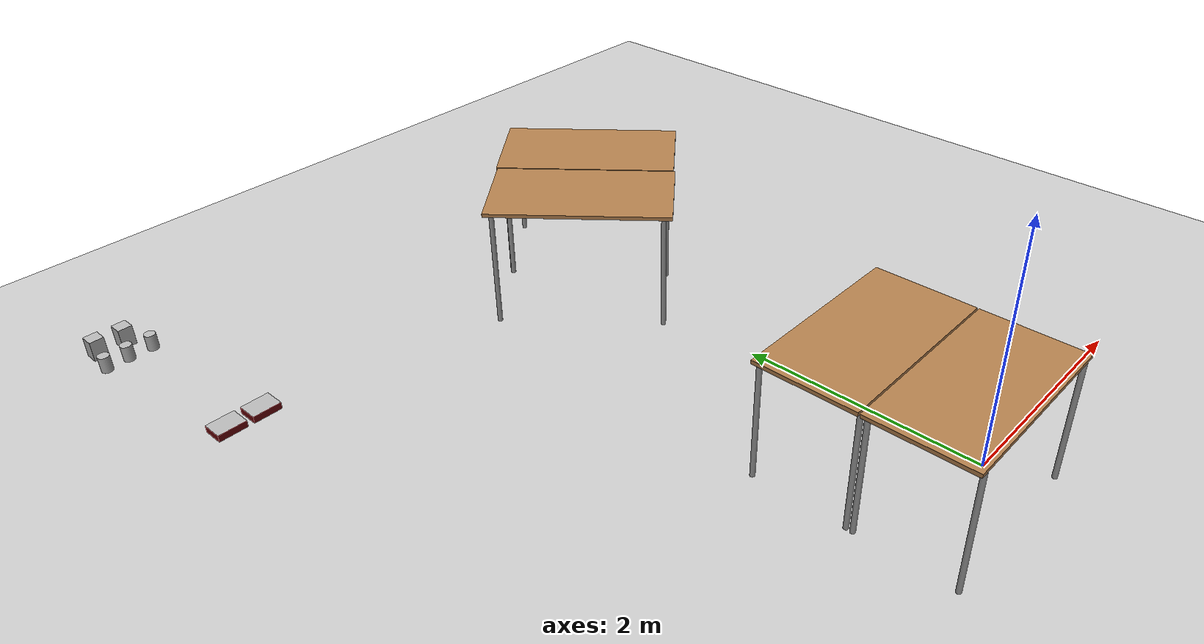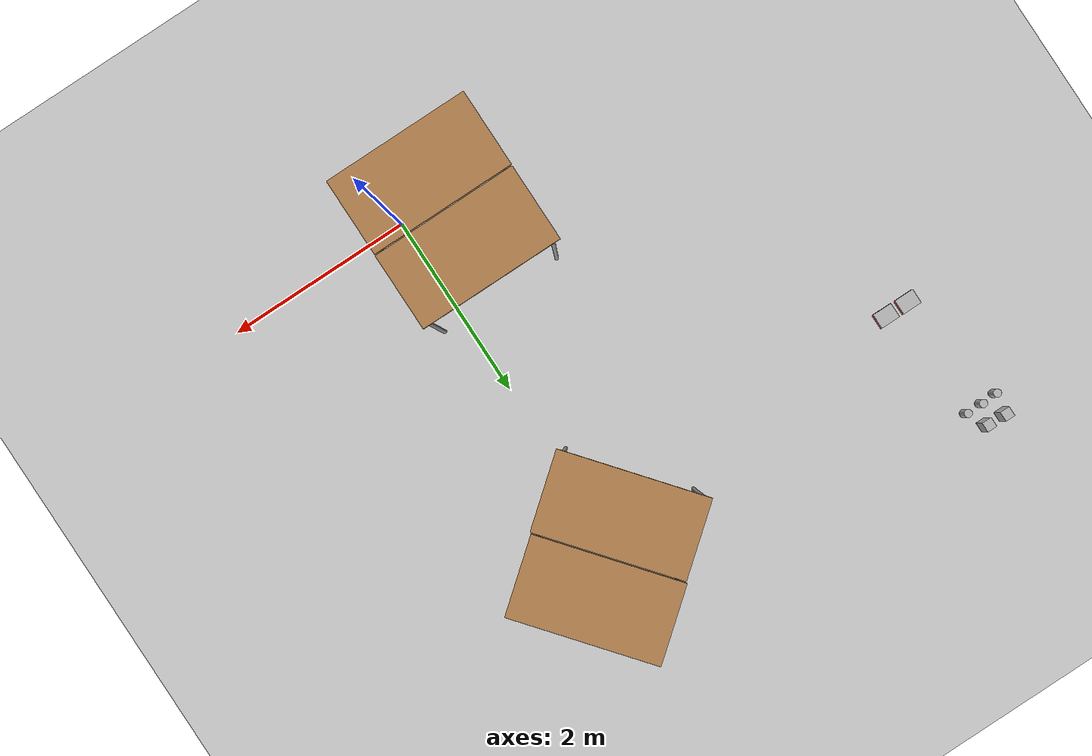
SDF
<sdf version="1.6">
 <world name="default">
  <model name="ground_plane">
   <static>1</static>
   <link name="link">
    <collision name="collision">
     <geometry><plane><normal>0 0 1</normal><size>100 100</size></plane></geometry>
     <surface><friction><ode><mu>100</mu><mu2>50</mu2></ode></friction></surface>
    </collision>
    <visual name="visual">
     <cast_shadows>0</cast_shadows>
     <geometry><plane><normal>0 0 1</normal><size>100 100</size></plane></geometry>
     <material>
      <script><uri>file://media/materials/scripts/gazebo.material</uri><name>Gazebo/Grey</name></script>
     </material>
    </visual>
   </link>
  </model>
  <model name="table">
   <static>1</static>
   <link name="link">
    <collision name="surface">
     <pose>0 0 1 0 -0 0</pose>
     <geometry><box><size>1.5 0.8 0.03</size></box></geometry>
     <surface><friction><ode><mu>0.6</mu><mu2>0.6</mu2></ode></friction></surface>
    </collision>
    <visual name="visual1">
     <pose>0 0 1 0 -0 0</pose>
     <geometry><box><size>1.5 0.8 0.03</size></box></geometry>
     <material>
      <script><uri>file://media/materials/scripts/gazebo.material</uri><name>Gazebo/Wood</name></script>
     </material>
    </visual>
    <collision name="front_left_leg">
     <pose>0.68 0.38 0.5 0 -0 0</pose>
     <geometry><cylinder><radius>0.02</radius><length>1</length></cylinder></geometry>
    </collision>
    <visual name="front_left_leg">
     <pose>0.68 0.38 0.5 0 -0 0</pose>
     <geometry><cylinder><radius>0.02</radius><length>1</length></cylinder></geometry>
     <material>
      <script><uri>file://media/materials/scripts/gazebo.material</uri><name>Gazebo/Grey</name></script>
     </material>
    </visual>
    <collision name="front_right_leg">
     <pose>0.68 -0.38 0.5 0 -0 0</pose>
     <geometry><cylinder><radius>0.02</radius><length>1</length></cylinder></geometry>
    </collision>
    <visual name="front_right_leg">
     <pose>0.68 -0.38 0.5 0 -0 0</pose>
     <geometry><cylinder><radius>0.02</radius><length>1</length></cylinder></geometry>
     <material>
      <script><uri>file://media/materials/scripts/gazebo.material</uri><name>Gazebo/Grey</name></script>
     </material>
    </visual>
    <collision name="back_right_leg">
     <pose>-0.68 -0.38 0.5 0 -0 0</pose>
     <geometry><cylinder><radius>0.02</radius><length>1</length></cylinder></geometry>
    </collision>
    <visual name="back_right_leg">
     <pose>-0.68 -0.38 0.5 0 -0 0</pose>
     <geometry><cylinder><radius>0.02</radius><length>1</length></cylinder></geometry>
     <material>
      <script><uri>file://media/materials/scripts/gazebo.material</uri><name>Gazebo/Grey</name></script>
     </material>
    </visual>
    <collision name="back_left_leg">
     <pose>-0.68 0.38 0.5 0 -0 0</pose>
     <geometry><cylinder><radius>0.02</radius><length>1</length></cylinder></geometry>
    </collision>
    <visual name="back_left_leg">
     <pose>-0.68 0.38 0.5 0 -0 0</pose>
     <geometry><cylinder><radius>0.02</radius><length>1</length></cylinder></geometry>
     <material>
      <script><uri>file://media/materials/scripts/gazebo.material</uri><name>Gazebo/Grey</name></script>
     </material>
    </visual>
   </link>
   <pose>-0.454136 -0.043466 0 0 -0 0</pose>
  </model>
  <model name="table_0">
   <static>1</static>
   <link name="link">
    <collision name="surface">
     <pose>0 0 1 0 -0 0</pose>
     <geometry><box><size>1.5 0.8 0.03</size></box></geometry>
     <surface><friction><ode><mu>0.6</mu><mu2>0.6</mu2></ode></friction></surface>
    </collision>
    <visual name="visual1">
     <pose>0 0 1 0 -0 0</pose>
     <geometry><box><size>1.5 0.8 0.03</size></box></geometry>
     <material>
      <script><uri>file://media/materials/scripts/gazebo.material</uri><name>Gazebo/Wood</name></script>
     </material>
    </visual>
    <collision name="front_left_leg">
     <pose>0.68 0.38 0.5 0 -0 0</pose>
     <geometry><cylinder><radius>0.02</radius><length>1</length></cylinder></geometry>
    </collision>
    <visual name="front_left_leg">
     <pose>0.68 0.38 0.5 0 -0 0</pose>
     <geometry><cylinder><radius>0.02</radius><length>1</length></cylinder></geometry>
     <material>
      <script><uri>file://media/materials/scripts/gazebo.material</uri><name>Gazebo/Grey</name></script>
     </material>
    </visual>
    <collision name="front_right_leg">
     <pose>0.68 -0.38 0.5 0 -0 0</pose>
     <geometry><cylinder><radius>0.02</radius><length>1</length></cylinder></geometry>
    </collision>
    <visual name="front_right_leg">
     <pose>0.68 -0.38 0.5 0 -0 0</pose>
     <geometry><cylinder><radius>0.02</radius><length>1</length></cylinder></geometry>
     <material>
      <script><uri>file://media/materials/scripts/gazebo.material</uri><name>Gazebo/Grey</name></script>
     </material>
    </visual>
    <collision name="back_right_leg">
     <pose>-0.68 -0.38 0.5 0 -0 0</pose>
     <geometry><cylinder><radius>0.02</radius><length>1</length></cylinder></geometry>
    </collision>
    <visual name="back_right_leg">
     <pose>-0.68 -0.38 0.5 0 -0 0</pose>
     <geometry><cylinder><radius>0.02</radius><length>1</length></cylinder></geometry>
     <material>
      <script><uri>file://media/materials/scripts/gazebo.material</uri><name>Gazebo/Grey</name></script>
     </material>
    </visual>
    <collision name="back_left_leg">
     <pose>-0.68 0.38 0.5 0 -0 0</pose>
     <geometry><cylinder><radius>0.02</radius><length>1</length></cylinder></geometry>
    </collision>
    <visual name="back_left_leg">
     <pose>-0.68 0.38 0.5 0 -0 0</pose>
     <geometry><cylinder><radius>0.02</radius><length>1</length></cylinder></geometry>
     <material>
      <script><uri>file://media/materials/scripts/gazebo.material</uri><name>Gazebo/Grey</name></script>
     </material>
    </visual>
   </link>
   <pose>-0.451822 0.770435 0 0 -0 0</pose>
  </model>
  <model name="table_5">
   <static>1</static>
   <link name="link">
    <collision name="surface">
     <pose>0 0 1 0 -0 0</pose>
     <geometry><box><size>1.5 0.8 0.03</size></box></geometry>
     <surface><friction><ode><mu>0.6</mu><mu2>0.6</mu2></ode></friction></surface>
    </collision>
    <visual name="visual1">
     <pose>0 0 1 0 -0 0</pose>
     <geometry><box><size>1.5 0.8 0.03</size></box></geometry>
     <material>
      <script><uri>file://media/materials/scripts/gazebo.material</uri><name>Gazebo/Wood</name></script>
     </material>
    </visual>
    <collision name="front_left_leg">
     <pose>0.68 0.38 0.5 0 -0 0</pose>
     <geometry><cylinder><radius>0.02</radius><length>1</length></cylinder></geometry>
    </collision>
    <visual name="front_left_leg">
     <pose>0.68 0.38 0.5 0 -0 0</pose>
     <geometry><cylinder><radius>0.02</radius><length>1</length></cylinder></geometry>
     <material>
      <script><uri>file://media/materials/scripts/gazebo.material</uri><name>Gazebo/Grey</name></script>
     </material>
    </visual>
    <collision name="front_right_leg">
     <pose>0.68 -0.38 0.5 0 -0 0</pose>
     <geometry><cylinder><radius>0.02</radius><length>1</length></cylinder></geometry>
    </collision>
    <visual name="front_right_leg">
     <pose>0.68 -0.38 0.5 0 -0 0</pose>
     <geometry><cylinder><radius>0.02</radius><length>1</length></cylinder></geometry>
     <material>
      <script><uri>file://media/materials/scripts/gazebo.material</uri><name>Gazebo/Grey</name></script>
     </material>
    </visual>
    <collision name="back_right_leg">
     <pose>-0.68 -0.38 0.5 0 -0 0</pose>
     <geometry><cylinder><radius>0.02</radius><length>1</length></cylinder></geometry>
    </collision>
    <visual name="back_right_leg">
     <pose>-0.68 -0.38 0.5 0 -0 0</pose>
     <geometry><cylinder><radius>0.02</radius><length>1</length></cylinder></geometry>
     <material>
      <script><uri>file://media/materials/scripts/gazebo.material</uri><name>Gazebo/Grey</name></script>
     </material>
    </visual>
    <collision name="back_left_leg">
     <pose>-0.68 0.38 0.5 0 -0 0</pose>
     <geometry><cylinder><radius>0.02</radius><length>1</length></cylinder></geometry>
    </collision>
    <visual name="back_left_leg">
     <pose>-0.68 0.38 0.5 0 -0 0</pose>
     <geometry><cylinder><radius>0.02</radius><length>1</length></cylinder></geometry>
     <material>
      <script><uri>file://media/materials/scripts/gazebo.material</uri><name>Gazebo/Grey</name></script>
     </material>
    </visual>
   </link>
   <pose>0.342889 4.10704 0 0 0 -0.888631</pose>
  </model>
  <model name="table_5_clone">
   <static>1</static>
   <link name="link">
    <collision name="surface">
     <pose>0 0 1 0 -0 0</pose>
     <geometry><box><size>1.5 0.8 0.03</size></box></geometry>
     <surface><friction><ode><mu>0.6</mu><mu2>0.6</mu2></ode></friction></surface>
    </collision>
    <visual name="visual1">
     <pose>0 0 1 0 -0 0</pose>
     <geometry><box><size>1.5 0.8 0.03</size></box></geometry>
     <material>
      <script><uri>file://media/materials/scripts/gazebo.material</uri><name>Gazebo/Wood</name></script>
     </material>
    </visual>
    <collision name="front_left_leg">
     <pose>0.68 0.38 0.5 0 -0 0</pose>
     <geometry><cylinder><radius>0.02</radius><length>1</length></cylinder></geometry>
    </collision>
    <visual name="front_left_leg">
     <pose>0.68 0.38 0.5 0 -0 0</pose>
     <geometry><cylinder><radius>0.02</radius><length>1</length></cylinder></geometry>
     <material>
      <script><uri>file://media/materials/scripts/gazebo.material</uri><name>Gazebo/Grey</name></script>
     </material>
    </visual>
    <collision name="front_right_leg">
     <pose>0.68 -0.38 0.5 0 -0 0</pose>
     <geometry><cylinder><radius>0.02</radius><length>1</length></cylinder></geometry>
    </collision>
    <visual name="front_right_leg">
     <pose>0.68 -0.38 0.5 0 -0 0</pose>
     <geometry><cylinder><radius>0.02</radius><length>1</length></cylinder></geometry>
     <material>
      <script><uri>file://media/materials/scripts/gazebo.material</uri><name>Gazebo/Grey</name></script>
     </material>
    </visual>
    <collision name="back_right_leg">
     <pose>-0.68 -0.38 0.5 0 -0 0</pose>
     <geometry><cylinder><radius>0.02</radius><length>1</length></cylinder></geometry>
    </collision>
    <visual name="back_right_leg">
     <pose>-0.68 -0.38 0.5 0 -0 0</pose>
     <geometry><cylinder><radius>0.02</radius><length>1</length></cylinder></geometry>
     <material>
      <script><uri>file://media/materials/scripts/gazebo.material</uri><name>Gazebo/Grey</name></script>
     </material>
    </visual>
    <collision name="back_left_leg">
     <pose>-0.68 0.38 0.5 0 -0 0</pose>
     <geometry><cylinder><radius>0.02</radius><length>1</length></cylinder></geometry>
    </collision>
    <visual name="back_left_leg">
     <pose>-0.68 0.38 0.5 0 -0 0</pose>
     <geometry><cylinder><radius>0.02</radius><length>1</length></cylinder></geometry>
     <material>
      <script><uri>file://media/materials/scripts/gazebo.material</uri><name>Gazebo/Grey</name></script>
     </material>
    </visual>
   </link>
   <pose>-0.278707 3.58494 0 0 0 -0.888631</pose>
  </model>
  <model name="tea_box">
   <link name="link">
    <pose>0 0 0.075 0 -0 0</pose>
    <visual name="visual">
     <geometry><box><size>0.1 0.1 0.15</size></box></geometry>
     <material>
      <script>
       <uri>model://tea_box/materials/scripts</uri>
       <uri>model://tea_box/materials/textures</uri>
       <name>tea_pat</name>
      </script>
     </material>
    </visual>
    <collision name="collision"><geometry><box><size>0.1 0.1 0.15</size></box></geometry></collision>
   </link>
   <static>1</static>
   <pose>-3.58836 4.77955 0.721 0 -0 0</pose>
  </model>
  <model name="coffee_box">
   <link name="link_0">
    <visual name="visual">
     <pose>0 0 0.06 0 -0 0</pose>
     <geometry><cylinder><radius>0.04</radius><length>0.12</length></cylinder></geometry>
     <material>
      <script>
       <uri>model://coffee_box/materials/scripts</uri>
       <uri>model://coffee_box/materials/textures</uri>
       <name>coffee_pat</name>
      </script>
     </material>
    </visual>
    <collision name="collision">
     <geometry><cylinder><radius>0.04</radius><length>0.12</length></cylinder></geometry>
    </collision>
   </link>
   <static>1</static>
   <pose>-3.82213 4.58122 0.721 0 -0 0</pose>
  </model>
  <model name="biscuit_box">
   <link name="link">
    <pose>0 0 0.025 0 -0 0</pose>
    <visual name="visual">
     <geometry><box><size>0.2 0.15 0.05</size></box></geometry>
     <material>
      <ambient>0.423 0.019 0.035 1</ambient>
      <diffuse>0.423 0.019 0.035 1</diffuse>
      <specular>0.01 0.01 0.01 1</specular>
      <emissive>0 0 0 1</emissive>
     </material>
    </visual>
    <collision name="collision"><geometry><box><size>0.1 0.1 0.15</size></box></geometry></collision>
   </link>
   <link name="link_1">
    <pose>0 0 0.05 0 -0 0</pose>
    <visual name="visual">
     <geometry><box><size>0.2 0.15 0.001</size></box></geometry>
     <material>
      <script>
       <uri>model://biscuit_box/materials/scripts</uri>
       <uri>model://biscuit_box/materials/textures</uri>
       <name>biscuit_pat</name>
      </script>
     </material>
    </visual>
    <collision name="collision"><geometry><box><size>0.1 0.1 0.15</size></box></geometry></collision>
   </link>
   <static>1</static>
   <pose>-3.61861 3.41915 0.721 0 -0 0</pose>
  </model>
  <model name="tea_box_clone">
   <link name="link">
    <pose>0 0 0.075 0 -0 0</pose>
    <visual name="visual">
     <geometry><box><size>0.1 0.1 0.15</size></box></geometry>
     <material>
      <script>
       <uri>model://tea_box/materials/scripts</uri>
       <uri>model://tea_box/materials/textures</uri>
       <name>tea_pat</name>
      </script>
     </material>
    </visual>
    <collision name="collision"><geometry><box><size>0.1 0.1 0.15</size></box></geometry></collision>
   </link>
   <static>1</static>
   <pose>-3.78351 4.78808 0.721 0 -0 0</pose>
  </model>
  <model name="coffee_box_clone">
   <link name="link_0">
    <visual name="visual">
     <pose>0 0 0.06 0 -0 0</pose>
     <geometry><cylinder><radius>0.04</radius><length>0.12</length></cylinder></geometry>
     <material>
      <script>
       <uri>model://coffee_box/materials/scripts</uri>
       <uri>model://coffee_box/materials/textures</uri>
       <name>coffee_pat</name>
      </script>
     </material>
    </visual>
    <collision name="collision">
     <geometry><cylinder><radius>0.04</radius><length>0.12</length></cylinder></geometry>
    </collision>
   </link>
   <static>1</static>
   <pose>-3.66182 4.5899 0.721 0 -0 0</pose>
  </model>
  <model name="coffee_box_clone_0">
   <link name="link_0">
    <visual name="visual">
     <pose>0 0 0.06 0 -0 0</pose>
     <geometry><cylinder><radius>0.04</radius><length>0.12</length></cylinder></geometry>
     <material>
      <script>
       <uri>model://coffee_box/materials/scripts</uri>
       <uri>model://coffee_box/materials/textures</uri>
       <name>coffee_pat</name>
      </script>
     </material>
    </visual>
    <collision name="collision">
     <geometry><cylinder><radius>0.04</radius><length>0.12</length></cylinder></geometry>
    </collision>
   </link>
   <static>1</static>
   <pose>-3.49152 4.59004 0.721 0 -0 0</pose>
  </model>
  <model name="biscuit_box_clone">
   <link name="link">
    <pose>0 0 0.025 0 -0 0</pose>
    <visual name="visual">
     <geometry><box><size>0.2 0.15 0.05</size></box></geometry>
     <material>
      <ambient>0.423 0.019 0.035 1</ambient>
      <diffuse>0.423 0.019 0.035 1</diffuse>
      <specular>0.01 0.01 0.01 1</specular>
      <emissive>0 0 0 1</emissive>
     </material>
    </visual>
    <collision name="collision"><geometry><box><size>0.1 0.1 0.15</size></box></geometry></collision>
   </link>
   <link name="link_1">
    <pose>0 0 0.05 0 -0 0</pose>
    <visual name="visual">
     <geometry><box><size>0.2 0.15 0.001</size></box></geometry>
     <material>
      <script>
       <uri>model://biscuit_box/materials/scripts</uri>
       <uri>model://biscuit_box/materials/textures</uri>
       <name>biscuit_pat</name>
      </script>
     </material>
    </visual>
    <collision name="collision"><geometry><box><size>0.1 0.1 0.15</size></box></geometry></collision>
   </link>
   <static>1</static>
   <pose>-3.37535 3.41799 0.721 0 -0 0</pose>
  </model>
 </world>
</sdf>
